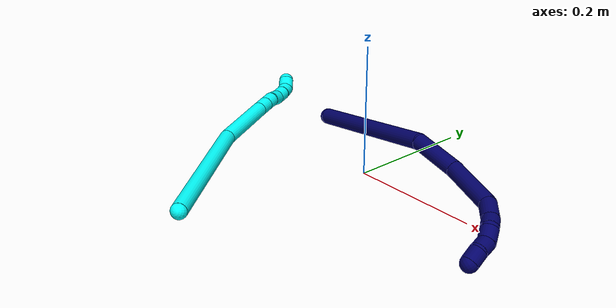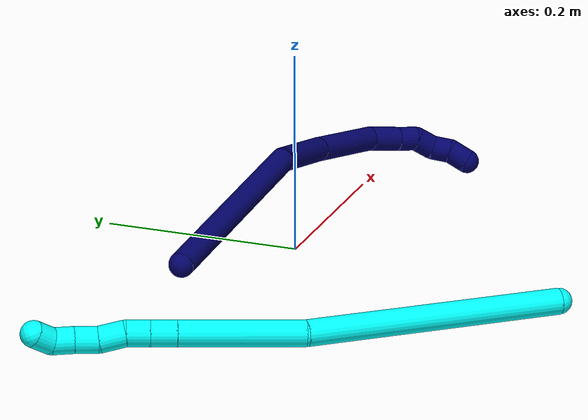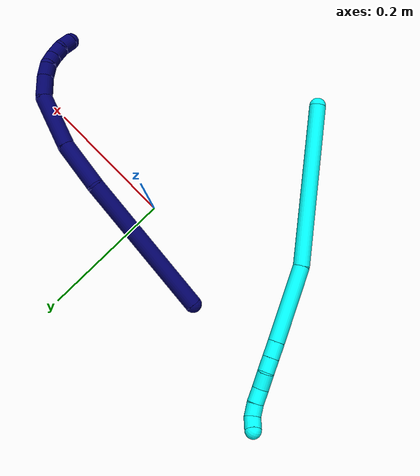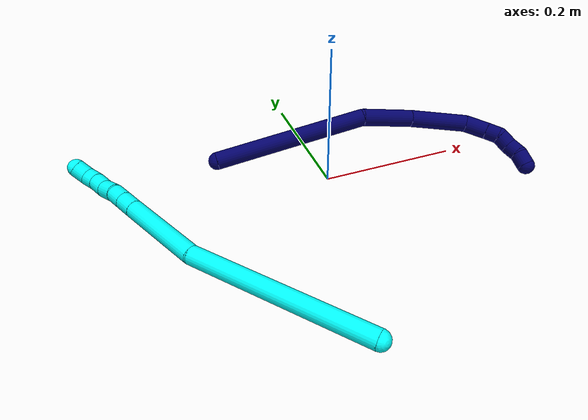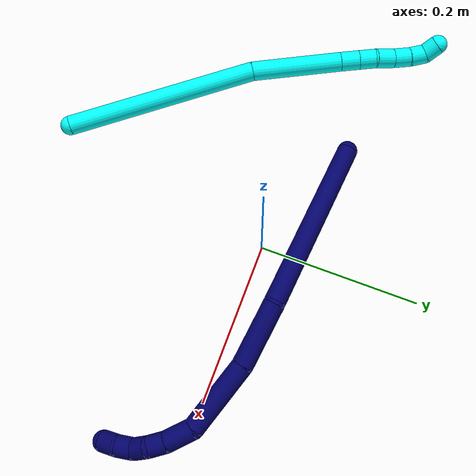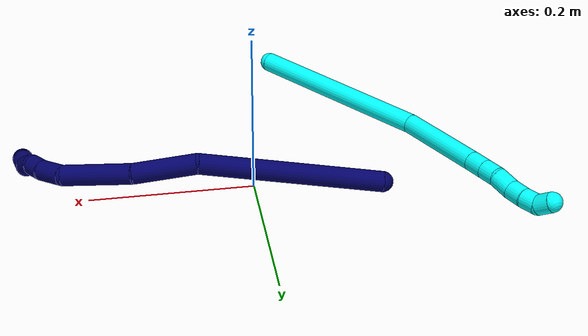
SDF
<sdf version="1.7">
 <world name="default">
  <model name="photoneo_s_sensor">
   <static>1</static>
   <pose>0 0 2 1.57079 1.57079 3.14159</pose>
   <link name="link">
    <inertial><mass>0.1</mass></inertial>
    <sensor name="sensor" type="depth">
     <update_rate>30</update_rate>
     <camera>
      <horizontal_fov>1.22</horizontal_fov>
      <image><width>1920</width><height>1200</height><format>B8G8R8</format></image>
      <clip><near>0.1</near><far>4</far></clip>
      <depth_camera><output>points</output></depth_camera>
     </camera>
     <plugin name="camera_plugin" filename="libgazebo_ros_depth_camera.so">
      <baseline>0.2</baseline>
      <alwaysOn>1</alwaysOn>
      <updateRate>0.0</updateRate>
      <cameraName>camera_ir</cameraName>
      <imageTopicName>/camera/color/image_raw</imageTopicName>
      <cameraInfoTopicName>/camera/color/camera_info</cameraInfoTopicName>
      <depthImageTopicName>/camera/depth/image_raw</depthImageTopicName>
      <depthImageCameraInfoTopicName>/camera/depth/camera_info</depthImageCameraInfoTopicName>
      <pointCloudTopicName>/camera/depth/points</pointCloudTopicName>
      <frameName>fr_optical</frameName>
      <pointCloudCutoff>0.1</pointCloudCutoff>
      <pointCloudCutoffMax>2.0</pointCloudCutoffMax>
      <distortionK1>0</distortionK1>
      <distortionK2>0</distortionK2>
      <distortionK3>0</distortionK3>
      <distortionT1>0</distortionT1>
      <distortionT2>0</distortionT2>
      <CxPrime>0</CxPrime>
      <Cx>0</Cx>
      <Cy>0</Cy>
      <focalLength>0</focalLength>
      <hackBaseline>0</hackBaseline>
     </plugin>
    </sensor>
   </link>
  </model>
  <model name="3">
   <static>0</static>
   <link name="3">
    <collision name="collision-cylinder-e_1_1_4">
     <pose>-0.060158 0.025633 0.105329 -0.238718 -0.506634 0.062074</pose>
     <geometry><cylinder><radius>0.0125</radius><length>0.247953</length></cylinder></geometry>
     <surface>
      <friction><ode><mu>1.16</mu><mu2>1.16</mu2><slip1>0</slip1><slip2>0</slip2></ode></friction>
      <contact><ode><kp>1e+06</kp><kd>1</kd><max_vel>0</max_vel><min_depth>0.001</min_depth></ode></contact>
     </surface>
    </collision>
    <visual name="visual-cylinder-e_1_1_4">
     <pose>-0.060158 0.025633 0.105329 -0.238718 -0.506634 0.062074</pose>
     <geometry><cylinder><radius>0.0125</radius><length>0.247953</length></cylinder></geometry>
     <material><ambient>0.003922 1 0.996078 1</ambient></material>
    </visual>
    <collision name="collision-cylinder-e_2_4_5">
     <pose>-0.147386 0.050523 0.262933 0.014205 -0.477766 -0.003459</pose>
     <geometry><cylinder><radius>0.0125</radius><length>0.117747</length></cylinder></geometry>
     <surface>
      <friction><ode><mu>1.16</mu><mu2>1.16</mu2><slip1>0</slip1><slip2>0</slip2></ode></friction>
      <contact><ode><kp>1e+06</kp><kd>1</kd><max_vel>0</max_vel><min_depth>0.001</min_depth></ode></contact>
     </surface>
    </collision>
    <visual name="visual-cylinder-e_2_4_5">
     <pose>-0.147386 0.050523 0.262933 0.014205 -0.477766 -0.003459</pose>
     <geometry><cylinder><radius>0.0125</radius><length>0.117747</length></cylinder></geometry>
     <material><ambient>0.003922 1 0.996078 1</ambient></material>
    </visual>
    <collision name="collision-cylinder-e_3_5_6">
     <pose>-0.179979 0.049492 0.326079 0.026469 -0.469958 -0.006337</pose>
     <geometry><cylinder><radius>0.0125</radius><length>0.024393</length></cylinder></geometry>
     <surface>
      <friction><ode><mu>1.16</mu><mu2>1.16</mu2><slip1>0</slip1><slip2>0</slip2></ode></friction>
      <contact><ode><kp>1e+06</kp><kd>1</kd><max_vel>0</max_vel><min_depth>0.001</min_depth></ode></contact>
     </surface>
    </collision>
    <visual name="visual-cylinder-e_3_5_6">
     <pose>-0.179979 0.049492 0.326079 0.026469 -0.469958 -0.006337</pose>
     <geometry><cylinder><radius>0.0125</radius><length>0.024393</length></cylinder></geometry>
     <material><ambient>0.003922 1 0.996078 1</ambient></material>
    </visual>
    <collision name="collision-cylinder-e_4_6_7">
     <pose>-0.190485 0.048939 0.346782 0.027047 -0.468985 -0.006462</pose>
     <geometry><cylinder><radius>0.0125</radius><length>0.022051</length></cylinder></geometry>
     <surface>
      <friction><ode><mu>1.16</mu><mu2>1.16</mu2><slip1>0</slip1><slip2>0</slip2></ode></friction>
      <contact><ode><kp>1e+06</kp><kd>1</kd><max_vel>0</max_vel><min_depth>0.001</min_depth></ode></contact>
     </surface>
    </collision>
    <visual name="visual-cylinder-e_4_6_7">
     <pose>-0.190485 0.048939 0.346782 0.027047 -0.468985 -0.006462</pose>
     <geometry><cylinder><radius>0.0125</radius><length>0.022051</length></cylinder></geometry>
     <material><ambient>0.003922 1 0.996078 1</ambient></material>
    </visual>
    <collision name="collision-cylinder-e_5_7_8">
     <pose>-0.198623 0.049869 0.368665 -0.098971 -0.254808 0.012688</pose>
     <geometry><cylinder><radius>0.0125</radius><length>0.025032</length></cylinder></geometry>
     <surface>
      <friction><ode><mu>1.16</mu><mu2>1.16</mu2><slip1>0</slip1><slip2>0</slip2></ode></friction>
      <contact><ode><kp>1e+06</kp><kd>1</kd><max_vel>0</max_vel><min_depth>0.001</min_depth></ode></contact>
     </surface>
    </collision>
    <visual name="visual-cylinder-e_5_7_8">
     <pose>-0.198623 0.049869 0.368665 -0.098971 -0.254808 0.012688</pose>
     <geometry><cylinder><radius>0.0125</radius><length>0.025032</length></cylinder></geometry>
     <material><ambient>0.003922 1 0.996078 1</ambient></material>
    </visual>
    <collision name="collision-cylinder-e_6_8_9">
     <pose>-0.206702 0.050778 0.390746 0.028707 -0.456233 -0.006665</pose>
     <geometry><cylinder><radius>0.0125</radius><length>0.022351</length></cylinder></geometry>
     <surface>
      <friction><ode><mu>1.16</mu><mu2>1.16</mu2><slip1>0</slip1><slip2>0</slip2></ode></friction>
      <contact><ode><kp>1e+06</kp><kd>1</kd><max_vel>0</max_vel><min_depth>0.001</min_depth></ode></contact>
     </surface>
    </collision>
    <visual name="visual-cylinder-e_6_8_9">
     <pose>-0.206702 0.050778 0.390746 0.028707 -0.456233 -0.006665</pose>
     <geometry><cylinder><radius>0.0125</radius><length>0.022351</length></cylinder></geometry>
     <material><ambient>0.003922 1 0.996078 1</ambient></material>
    </visual>
    <collision name="collision-cylinder-e_7_9_10">
     <pose>-0.216507 0.051498 0.409699 -0.112406 -0.497869 0.028603</pose>
     <geometry><cylinder><radius>0.0125</radius><length>0.020444</length></cylinder></geometry>
     <surface>
      <friction><ode><mu>1.16</mu><mu2>1.16</mu2><slip1>0</slip1><slip2>0</slip2></ode></friction>
      <contact><ode><kp>1e+06</kp><kd>1</kd><max_vel>0</max_vel><min_depth>0.001</min_depth></ode></contact>
     </surface>
    </collision>
    <visual name="visual-cylinder-e_7_9_10">
     <pose>-0.216507 0.051498 0.409699 -0.112406 -0.497869 0.028603</pose>
     <geometry><cylinder><radius>0.0125</radius><length>0.020444</length></cylinder></geometry>
     <material><ambient>0.003922 1 0.996078 1</ambient></material>
    </visual>
    <collision name="collision-cylinder-e_8_10_2">
     <pose>-0.23017 0.053626 0.423305 -0.235034 -1.06935 0.139607</pose>
     <geometry><cylinder><radius>0.0125</radius><length>0.020029</length></cylinder></geometry>
     <surface>
      <friction><ode><mu>1.16</mu><mu2>1.16</mu2><slip1>0</slip1><slip2>0</slip2></ode></friction>
      <contact><ode><kp>1e+06</kp><kd>1</kd><max_vel>0</max_vel><min_depth>0.001</min_depth></ode></contact>
     </surface>
    </collision>
    <visual name="visual-cylinder-e_8_10_2">
     <pose>-0.23017 0.053626 0.423305 -0.235034 -1.06935 0.139607</pose>
     <geometry><cylinder><radius>0.0125</radius><length>0.020029</length></cylinder></geometry>
     <material><ambient>0.003922 1 0.996078 1</ambient></material>
    </visual>
    <collision name="collision-sphere-2">
     <pose>-0.238952 0.054747 0.427987 0 -0 0</pose>
     <geometry><sphere><radius>0.0125</radius></sphere></geometry>
     <surface>
      <friction><ode><mu>1.16</mu><mu2>1.16</mu2><slip1>0</slip1><slip2>0</slip2></ode></friction>
      <contact><ode><kp>1e+06</kp><kd>1</kd><max_vel>0</max_vel><min_depth>0.001</min_depth></ode></contact>
     </surface>
    </collision>
    <visual name="visual-sphere-2">
     <pose>-0.238952 0.054747 0.427987 0 -0 0</pose>
     <geometry><sphere><radius>0.0125</radius></sphere></geometry>
     <material><ambient>0.003922 1 0.996078 1</ambient></material>
    </visual>
    <collision name="collision-sphere-10">
     <pose>-0.221389 0.052505 0.418624 0 -0 0</pose>
     <geometry><sphere><radius>0.0125</radius></sphere></geometry>
     <surface>
      <friction><ode><mu>1.16</mu><mu2>1.16</mu2><slip1>0</slip1><slip2>0</slip2></ode></friction>
      <contact><ode><kp>1e+06</kp><kd>1</kd><max_vel>0</max_vel><min_depth>0.001</min_depth></ode></contact>
     </surface>
    </collision>
    <visual name="visual-sphere-10">
     <pose>-0.221389 0.052505 0.418624 0 -0 0</pose>
     <geometry><sphere><radius>0.0125</radius></sphere></geometry>
     <material><ambient>0.003922 1 0.996078 1</ambient></material>
    </visual>
    <collision name="collision-sphere-9">
     <pose>-0.211625 0.05049 0.400775 0 -0 0</pose>
     <geometry><sphere><radius>0.0125</radius></sphere></geometry>
     <surface>
      <friction><ode><mu>1.16</mu><mu2>1.16</mu2><slip1>0</slip1><slip2>0</slip2></ode></friction>
      <contact><ode><kp>1e+06</kp><kd>1</kd><max_vel>0</max_vel><min_depth>0.001</min_depth></ode></contact>
     </surface>
    </collision>
    <visual name="visual-sphere-9">
     <pose>-0.211625 0.05049 0.400775 0 -0 0</pose>
     <geometry><sphere><radius>0.0125</radius></sphere></geometry>
     <material><ambient>0.003922 1 0.996078 1</ambient></material>
    </visual>
    <collision name="collision-sphere-4">
     <pose>-0.120316 0.051265 0.210657 0 -0 0</pose>
     <geometry><sphere><radius>0.0125</radius></sphere></geometry>
     <surface>
      <friction><ode><mu>1.16</mu><mu2>1.16</mu2><slip1>0</slip1><slip2>0</slip2></ode></friction>
      <contact><ode><kp>1e+06</kp><kd>1</kd><max_vel>0</max_vel><min_depth>0.001</min_depth></ode></contact>
     </surface>
    </collision>
    <visual name="visual-sphere-4">
     <pose>-0.120316 0.051265 0.210657 0 -0 0</pose>
     <geometry><sphere><radius>0.0125</radius></sphere></geometry>
     <material><ambient>0.003922 1 0.996078 1</ambient></material>
    </visual>
    <collision name="collision-sphere-1">
     <geometry><sphere><radius>0.0125</radius></sphere></geometry>
     <surface>
      <friction><ode><mu>1.16</mu><mu2>1.16</mu2><slip1>0</slip1><slip2>0</slip2></ode></friction>
      <contact><ode><kp>1e+06</kp><kd>1</kd><max_vel>0</max_vel><min_depth>0.001</min_depth></ode></contact>
     </surface>
    </collision>
    <visual name="visual-sphere-1">
     <geometry><sphere><radius>0.0125</radius></sphere></geometry>
     <material><ambient>0.003922 1 0.996078 1</ambient></material>
    </visual>
    <collision name="collision-sphere-8">
     <pose>-0.201778 0.051066 0.380718 0 -0 0</pose>
     <geometry><sphere><radius>0.0125</radius></sphere></geometry>
     <surface>
      <friction><ode><mu>1.16</mu><mu2>1.16</mu2><slip1>0</slip1><slip2>0</slip2></ode></friction>
      <contact><ode><kp>1e+06</kp><kd>1</kd><max_vel>0</max_vel><min_depth>0.001</min_depth></ode></contact>
     </surface>
    </collision>
    <visual name="visual-sphere-8">
     <pose>-0.201778 0.051066 0.380718 0 -0 0</pose>
     <geometry><sphere><radius>0.0125</radius></sphere></geometry>
     <material><ambient>0.003922 1 0.996078 1</ambient></material>
    </visual>
    <collision name="collision-sphere-5">
     <pose>-0.174455 0.04978 0.315209 0 -0 0</pose>
     <geometry><sphere><radius>0.0125</radius></sphere></geometry>
     <surface>
      <friction><ode><mu>1.16</mu><mu2>1.16</mu2><slip1>0</slip1><slip2>0</slip2></ode></friction>
      <contact><ode><kp>1e+06</kp><kd>1</kd><max_vel>0</max_vel><min_depth>0.001</min_depth></ode></contact>
     </surface>
    </collision>
    <visual name="visual-sphere-5">
     <pose>-0.174455 0.04978 0.315209 0 -0 0</pose>
     <geometry><sphere><radius>0.0125</radius></sphere></geometry>
     <material><ambient>0.003922 1 0.996078 1</ambient></material>
    </visual>
    <collision name="collision-sphere-6">
     <pose>-0.185502 0.049205 0.33695 0 -0 0</pose>
     <geometry><sphere><radius>0.0125</radius></sphere></geometry>
     <surface>
      <friction><ode><mu>1.16</mu><mu2>1.16</mu2><slip1>0</slip1><slip2>0</slip2></ode></friction>
      <contact><ode><kp>1e+06</kp><kd>1</kd><max_vel>0</max_vel><min_depth>0.001</min_depth></ode></contact>
     </surface>
    </collision>
    <visual name="visual-sphere-6">
     <pose>-0.185502 0.049205 0.33695 0 -0 0</pose>
     <geometry><sphere><radius>0.0125</radius></sphere></geometry>
     <material><ambient>0.003922 1 0.996078 1</ambient></material>
    </visual>
    <collision name="collision-sphere-7">
     <pose>-0.195469 0.048673 0.356613 0 -0 0</pose>
     <geometry><sphere><radius>0.0125</radius></sphere></geometry>
     <surface>
      <friction><ode><mu>1.16</mu><mu2>1.16</mu2><slip1>0</slip1><slip2>0</slip2></ode></friction>
      <contact><ode><kp>1e+06</kp><kd>1</kd><max_vel>0</max_vel><min_depth>0.001</min_depth></ode></contact>
     </surface>
    </collision>
    <visual name="visual-sphere-7">
     <pose>-0.195469 0.048673 0.356613 0 -0 0</pose>
     <geometry><sphere><radius>0.0125</radius></sphere></geometry>
     <material><ambient>0.003922 1 0.996078 1</ambient></material>
    </visual>
    <inertial>
     <pose>-0.118979 0.038202 0.214987 0 -0 0</pose>
     <mass>0.5</mass>
     <inertia>
      <ixx>0.001302</ixx>
      <ixy>0</ixy>
      <ixz>0</ixz>
      <iyy>0.001475</iyy>
      <iyz>0</iyz>
      <izz>0.000461</izz>
     </inertia>
    </inertial>
   </link>
   <pose>-0.064072 -0.287978 0.011492 -2.43327 1.01416 -0.487502</pose>
  </model>
  <model name="7">
   <static>0</static>
   <link name="7">
    <collision name="collision-cylinder-e_1_1_4">
     <pose>0.094742 -0.004836 -0.056923 3.05683 1.02819 2.9917</pose>
     <geometry><cylinder><radius>0.0125</radius><length>0.221266</length></cylinder></geometry>
     <surface>
      <friction><ode><mu>1.16</mu><mu2>1.16</mu2><slip1>0</slip1><slip2>0</slip2></ode></friction>
      <contact><ode><kp>1e+06</kp><kd>1</kd><max_vel>0</max_vel><min_depth>0.001</min_depth></ode></contact>
     </surface>
    </collision>
    <visual name="visual-cylinder-e_1_1_4">
     <pose>0.094742 -0.004836 -0.056923 3.05683 1.02819 2.9917</pose>
     <geometry><cylinder><radius>0.0125</radius><length>0.221266</length></cylinder></geometry>
     <material><ambient>0.003922 0 0.403922 1</ambient></material>
    </visual>
    <collision name="collision-cylinder-e_2_4_5">
     <pose>0.224704 -0.020643 -0.125478 2.38545 1.14463 2.03666</pose>
     <geometry><cylinder><radius>0.0125</radius><length>0.077359</length></cylinder></geometry>
     <surface>
      <friction><ode><mu>1.16</mu><mu2>1.16</mu2><slip1>0</slip1><slip2>0</slip2></ode></friction>
      <contact><ode><kp>1e+06</kp><kd>1</kd><max_vel>0</max_vel><min_depth>0.001</min_depth></ode></contact>
     </surface>
    </collision>
    <visual name="visual-cylinder-e_2_4_5">
     <pose>0.224704 -0.020643 -0.125478 2.38545 1.14463 2.03666</pose>
     <geometry><cylinder><radius>0.0125</radius><length>0.077359</length></cylinder></geometry>
     <material><ambient>0.003922 0 0.403922 1</ambient></material>
    </visual>
    <collision name="collision-cylinder-e_3_5_6">
     <pose>0.301976 -0.038132 -0.144804 2.43873 1.33546 2.27114</pose>
     <geometry><cylinder><radius>0.0125</radius><length>0.086488</length></cylinder></geometry>
     <surface>
      <friction><ode><mu>1.16</mu><mu2>1.16</mu2><slip1>0</slip1><slip2>0</slip2></ode></friction>
      <contact><ode><kp>1e+06</kp><kd>1</kd><max_vel>0</max_vel><min_depth>0.001</min_depth></ode></contact>
     </surface>
    </collision>
    <visual name="visual-cylinder-e_3_5_6">
     <pose>0.301976 -0.038132 -0.144804 2.43873 1.33546 2.27114</pose>
     <geometry><cylinder><radius>0.0125</radius><length>0.086488</length></cylinder></geometry>
     <material><ambient>0.003922 0 0.403922 1</ambient></material>
    </visual>
    <collision name="collision-cylinder-e_4_6_7">
     <pose>0.360532 -0.043171 -0.149137 -0.414665 1.35193 -0.334266</pose>
     <geometry><cylinder><radius>0.0125</radius><length>0.033814</length></cylinder></geometry>
     <surface>
      <friction><ode><mu>1.16</mu><mu2>1.16</mu2><slip1>0</slip1><slip2>0</slip2></ode></friction>
      <contact><ode><kp>1e+06</kp><kd>1</kd><max_vel>0</max_vel><min_depth>0.001</min_depth></ode></contact>
     </surface>
    </collision>
    <visual name="visual-cylinder-e_4_6_7">
     <pose>0.360532 -0.043171 -0.149137 -0.414665 1.35193 -0.334266</pose>
     <geometry><cylinder><radius>0.0125</radius><length>0.033814</length></cylinder></geometry>
     <material><ambient>0.003922 0 0.403922 1</ambient></material>
    </visual>
    <collision name="collision-cylinder-e_5_7_8">
     <pose>0.386322 -0.039213 -0.142749 -0.686081 1.17195 -0.465533</pose>
     <geometry><cylinder><radius>0.0125</radius><length>0.020153</length></cylinder></geometry>
     <surface>
      <friction><ode><mu>1.16</mu><mu2>1.16</mu2><slip1>0</slip1><slip2>0</slip2></ode></friction>
      <contact><ode><kp>1e+06</kp><kd>1</kd><max_vel>0</max_vel><min_depth>0.001</min_depth></ode></contact>
     </surface>
    </collision>
    <visual name="visual-cylinder-e_5_7_8">
     <pose>0.386322 -0.039213 -0.142749 -0.686081 1.17195 -0.465533</pose>
     <geometry><cylinder><radius>0.0125</radius><length>0.020153</length></cylinder></geometry>
     <material><ambient>0.003922 0 0.403922 1</ambient></material>
    </visual>
    <collision name="collision-cylinder-e_6_8_9">
     <pose>0.403764 -0.037918 -0.133631 0.192095 0.920465 0.09545</pose>
     <geometry><cylinder><radius>0.0125</radius><length>0.020497</length></cylinder></geometry>
     <surface>
      <friction><ode><mu>1.16</mu><mu2>1.16</mu2><slip1>0</slip1><slip2>0</slip2></ode></friction>
      <contact><ode><kp>1e+06</kp><kd>1</kd><max_vel>0</max_vel><min_depth>0.001</min_depth></ode></contact>
     </surface>
    </collision>
    <visual name="visual-cylinder-e_6_8_9">
     <pose>0.403764 -0.037918 -0.133631 0.192095 0.920465 0.09545</pose>
     <geometry><cylinder><radius>0.0125</radius><length>0.020497</length></cylinder></geometry>
     <material><ambient>0.003922 0 0.403922 1</ambient></material>
    </visual>
    <collision name="collision-cylinder-e_7_9_10">
     <pose>0.418725 -0.035504 -0.12112 -0.510958 0.746216 -0.203771</pose>
     <geometry><cylinder><radius>0.0125</radius><length>0.020047</length></cylinder></geometry>
     <surface>
      <friction><ode><mu>1.16</mu><mu2>1.16</mu2><slip1>0</slip1><slip2>0</slip2></ode></friction>
      <contact><ode><kp>1e+06</kp><kd>1</kd><max_vel>0</max_vel><min_depth>0.001</min_depth></ode></contact>
     </surface>
    </collision>
    <visual name="visual-cylinder-e_7_9_10">
     <pose>0.418725 -0.035504 -0.12112 -0.510958 0.746216 -0.203771</pose>
     <geometry><cylinder><radius>0.0125</radius><length>0.020047</length></cylinder></geometry>
     <material><ambient>0.003922 0 0.403922 1</ambient></material>
    </visual>
    <collision name="collision-cylinder-e_8_10_2">
     <pose>0.43143 -0.031217 -0.106423 -0.08293 0.617655 -0.026471</pose>
     <geometry><cylinder><radius>0.0125</radius><length>0.020375</length></cylinder></geometry>
     <surface>
      <friction><ode><mu>1.16</mu><mu2>1.16</mu2><slip1>0</slip1><slip2>0</slip2></ode></friction>
      <contact><ode><kp>1e+06</kp><kd>1</kd><max_vel>0</max_vel><min_depth>0.001</min_depth></ode></contact>
     </surface>
    </collision>
    <visual name="visual-cylinder-e_8_10_2">
     <pose>0.43143 -0.031217 -0.106423 -0.08293 0.617655 -0.026471</pose>
     <geometry><cylinder><radius>0.0125</radius><length>0.020375</length></cylinder></geometry>
     <material><ambient>0.003922 0 0.403922 1</ambient></material>
    </visual>
    <collision name="collision-sphere-2">
     <pose>0.43733 -0.030529 -0.098147 0 -0 0</pose>
     <geometry><sphere><radius>0.0125</radius></sphere></geometry>
     <surface>
      <friction><ode><mu>1.16</mu><mu2>1.16</mu2><slip1>0</slip1><slip2>0</slip2></ode></friction>
      <contact><ode><kp>1e+06</kp><kd>1</kd><max_vel>0</max_vel><min_depth>0.001</min_depth></ode></contact>
     </surface>
    </collision>
    <visual name="visual-sphere-2">
     <pose>0.43733 -0.030529 -0.098147 0 -0 0</pose>
     <geometry><sphere><radius>0.0125</radius></sphere></geometry>
     <material><ambient>0.003922 0 0.403922 1</ambient></material>
    </visual>
    <collision name="collision-sphere-10">
     <pose>0.42553 -0.031905 -0.1147 0 -0 0</pose>
     <geometry><sphere><radius>0.0125</radius></sphere></geometry>
     <surface>
      <friction><ode><mu>1.16</mu><mu2>1.16</mu2><slip1>0</slip1><slip2>0</slip2></ode></friction>
      <contact><ode><kp>1e+06</kp><kd>1</kd><max_vel>0</max_vel><min_depth>0.001</min_depth></ode></contact>
     </surface>
    </collision>
    <visual name="visual-sphere-10">
     <pose>0.42553 -0.031905 -0.1147 0 -0 0</pose>
     <geometry><sphere><radius>0.0125</radius></sphere></geometry>
     <material><ambient>0.003922 0 0.403922 1</ambient></material>
    </visual>
    <collision name="collision-sphere-9">
     <pose>0.411921 -0.039103 -0.12754 0 -0 0</pose>
     <geometry><sphere><radius>0.0125</radius></sphere></geometry>
     <surface>
      <friction><ode><mu>1.16</mu><mu2>1.16</mu2><slip1>0</slip1><slip2>0</slip2></ode></friction>
      <contact><ode><kp>1e+06</kp><kd>1</kd><max_vel>0</max_vel><min_depth>0.001</min_depth></ode></contact>
     </surface>
    </collision>
    <visual name="visual-sphere-9">
     <pose>0.411921 -0.039103 -0.12754 0 -0 0</pose>
     <geometry><sphere><radius>0.0125</radius></sphere></geometry>
     <material><ambient>0.003922 0 0.403922 1</ambient></material>
    </visual>
    <collision name="collision-sphere-4">
     <pose>0.189484 -0.009672 -0.113846 0 -0 0</pose>
     <geometry><sphere><radius>0.0125</radius></sphere></geometry>
     <surface>
      <friction><ode><mu>1.16</mu><mu2>1.16</mu2><slip1>0</slip1><slip2>0</slip2></ode></friction>
      <contact><ode><kp>1e+06</kp><kd>1</kd><max_vel>0</max_vel><min_depth>0.001</min_depth></ode></contact>
     </surface>
    </collision>
    <visual name="visual-sphere-4">
     <pose>0.189484 -0.009672 -0.113846 0 -0 0</pose>
     <geometry><sphere><radius>0.0125</radius></sphere></geometry>
     <material><ambient>0.003922 0 0.403922 1</ambient></material>
    </visual>
    <collision name="collision-sphere-1">
     <geometry><sphere><radius>0.0125</radius></sphere></geometry>
     <surface>
      <friction><ode><mu>1.16</mu><mu2>1.16</mu2><slip1>0</slip1><slip2>0</slip2></ode></friction>
      <contact><ode><kp>1e+06</kp><kd>1</kd><max_vel>0</max_vel><min_depth>0.001</min_depth></ode></contact>
     </surface>
    </collision>
    <visual name="visual-sphere-1">
     <geometry><sphere><radius>0.0125</radius></sphere></geometry>
     <material><ambient>0.003922 0 0.403922 1</ambient></material>
    </visual>
    <collision name="collision-sphere-8">
     <pose>0.395607 -0.036733 -0.139722 0 -0 0</pose>
     <geometry><sphere><radius>0.0125</radius></sphere></geometry>
     <surface>
      <friction><ode><mu>1.16</mu><mu2>1.16</mu2><slip1>0</slip1><slip2>0</slip2></ode></friction>
      <contact><ode><kp>1e+06</kp><kd>1</kd><max_vel>0</max_vel><min_depth>0.001</min_depth></ode></contact>
     </surface>
    </collision>
    <visual name="visual-sphere-8">
     <pose>0.395607 -0.036733 -0.139722 0 -0 0</pose>
     <geometry><sphere><radius>0.0125</radius></sphere></geometry>
     <material><ambient>0.003922 0 0.403922 1</ambient></material>
    </visual>
    <collision name="collision-sphere-5">
     <pose>0.259924 -0.031614 -0.13711 0 -0 0</pose>
     <geometry><sphere><radius>0.0125</radius></sphere></geometry>
     <surface>
      <friction><ode><mu>1.16</mu><mu2>1.16</mu2><slip1>0</slip1><slip2>0</slip2></ode></friction>
      <contact><ode><kp>1e+06</kp><kd>1</kd><max_vel>0</max_vel><min_depth>0.001</min_depth></ode></contact>
     </surface>
    </collision>
    <visual name="visual-sphere-5">
     <pose>0.259924 -0.031614 -0.13711 0 -0 0</pose>
     <geometry><sphere><radius>0.0125</radius></sphere></geometry>
     <material><ambient>0.003922 0 0.403922 1</ambient></material>
    </visual>
    <collision name="collision-sphere-6">
     <pose>0.344028 -0.044649 -0.152497 0 -0 0</pose>
     <geometry><sphere><radius>0.0125</radius></sphere></geometry>
     <surface>
      <friction><ode><mu>1.16</mu><mu2>1.16</mu2><slip1>0</slip1><slip2>0</slip2></ode></friction>
      <contact><ode><kp>1e+06</kp><kd>1</kd><max_vel>0</max_vel><min_depth>0.001</min_depth></ode></contact>
     </surface>
    </collision>
    <visual name="visual-sphere-6">
     <pose>0.344028 -0.044649 -0.152497 0 -0 0</pose>
     <geometry><sphere><radius>0.0125</radius></sphere></geometry>
     <material><ambient>0.003922 0 0.403922 1</ambient></material>
    </visual>
    <collision name="collision-sphere-7">
     <pose>0.377036 -0.041692 -0.145777 0 -0 0</pose>
     <geometry><sphere><radius>0.0125</radius></sphere></geometry>
     <surface>
      <friction><ode><mu>1.16</mu><mu2>1.16</mu2><slip1>0</slip1><slip2>0</slip2></ode></friction>
      <contact><ode><kp>1e+06</kp><kd>1</kd><max_vel>0</max_vel><min_depth>0.001</min_depth></ode></contact>
     </surface>
    </collision>
    <visual name="visual-sphere-7">
     <pose>0.377036 -0.041692 -0.145777 0 -0 0</pose>
     <geometry><sphere><radius>0.0125</radius></sphere></geometry>
     <material><ambient>0.003922 0 0.403922 1</ambient></material>
    </visual>
    <inertial>
     <pose>0.219802 -0.02068 -0.100162 0 -0 0</pose>
     <mass>0.5</mass>
     <inertia>
      <ixx>-0.000348</ixx>
      <ixy>0</ixy>
      <ixz>0</ixz>
      <iyy>0.001103</iyy>
      <iyz>0</iyz>
      <izz>-0.000832</izz>
     </inertia>
    </inertial>
   </link>
   <pose>-0.146658 0.059175 0.03023 2.18049 0.113893 -0.556419</pose>
  </model>
 </world>
</sdf>
